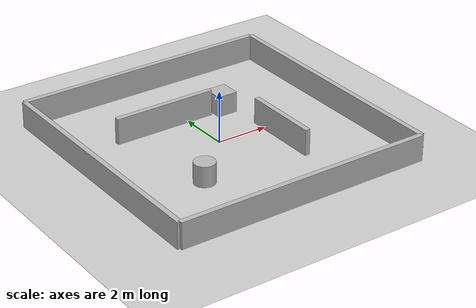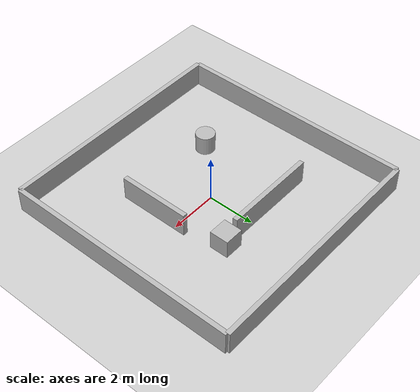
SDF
<sdf version="1.6">
  <world name="closed_world">

    <plugin name="gazebo_ros_init" filename="libgazebo_ros_init.so"/>
    <plugin name="gazebo_ros_factory" filename="libgazebo_ros_factory.so"/>

    <include>
      <uri>model://ground_plane</uri>
    </include>

    <include>
      <uri>model://sun</uri>
    </include>

    <!-- ===== 外墙（完全封闭 10x10m） ===== -->

    <model name="wall_north">
      <static>true</static>
      <link name="link">
        <collision name="col"><geometry><box><size>10 0.2 1</size></box></geometry></collision>
        <visual name="vis"><geometry><box><size>10 0.2 1</size></box></geometry></visual>
      </link>
      <pose>0 5 0.5 0 0 0</pose>
    </model>

    <model name="wall_south">
      <static>true</static>
      <link name="link">
        <collision name="col"><geometry><box><size>10 0.2 1</size></box></geometry></collision>
        <visual name="vis"><geometry><box><size>10 0.2 1</size></box></geometry></visual>
      </link>
      <pose>0 -5 0.5 0 0 0</pose>
    </model>

    <model name="wall_east">
      <static>true</static>
      <link name="link">
        <collision name="col"><geometry><box><size>0.2 10 1</size></box></geometry></collision>
        <visual name="vis"><geometry><box><size>0.2 10 1</size></box></geometry></visual>
      </link>
      <pose>5 0 0.5 0 0 0</pose>
    </model>

    <model name="wall_west">
      <static>true</static>
      <link name="link">
        <collision name="col"><geometry><box><size>0.2 10 1</size></box></geometry></collision>
        <visual name="vis"><geometry><box><size>0.2 10 1</size></box></geometry></visual>
      </link>
      <pose>-5 0 0.5 0 0 0</pose>
    </model>

    <!-- ===== 内部随机墙体 ===== -->

    <model name="inner_wall_1">
      <static>true</static>
      <link name="link">
        <collision name="col"><geometry><box><size>4 0.2 1</size></box></geometry></collision>
        <visual name="vis"><geometry><box><size>4 0.2 1</size></box></geometry></visual>
      </link>
      <pose>-1 2 0.5 0 0 0</pose>
    </model>

    <model name="inner_wall_2">
      <static>true</static>
      <link name="link">
        <collision name="col"><geometry><box><size>3 0.2 1</size></box></geometry></collision>
        <visual name="vis"><geometry><box><size>3 0.2 1</size></box></geometry></visual>
      </link>
      <pose>2 -1 0.5 0 0 1.57</pose>
    </model>

    <!-- ===== 障碍物 ===== -->

    <model name="box1">
      <static>true</static>
      <link name="link">
        <collision name="col"><geometry><box><size>0.8 0.8 0.8</size></box></geometry></collision>
        <visual name="vis"><geometry><box><size>0.8 0.8 0.8</size></box></geometry></visual>
      </link>
      <pose>1.5 2 0.4 0 0 0</pose>
    </model>

    <model name="box2">
      <static>true</static>
      <link name="link">
        <collision name="col"><geometry><cylinder><radius>0.4</radius><length>0.8</length></cylinder></geometry></collision>
        <visual name="vis"><geometry><cylinder><radius>0.4</radius><length>0.8</length></cylinder></geometry></visual>
      </link>
      <pose>-2 -2 0.4 0 0 0</pose>
    </model>

  </world>
</sdf>
